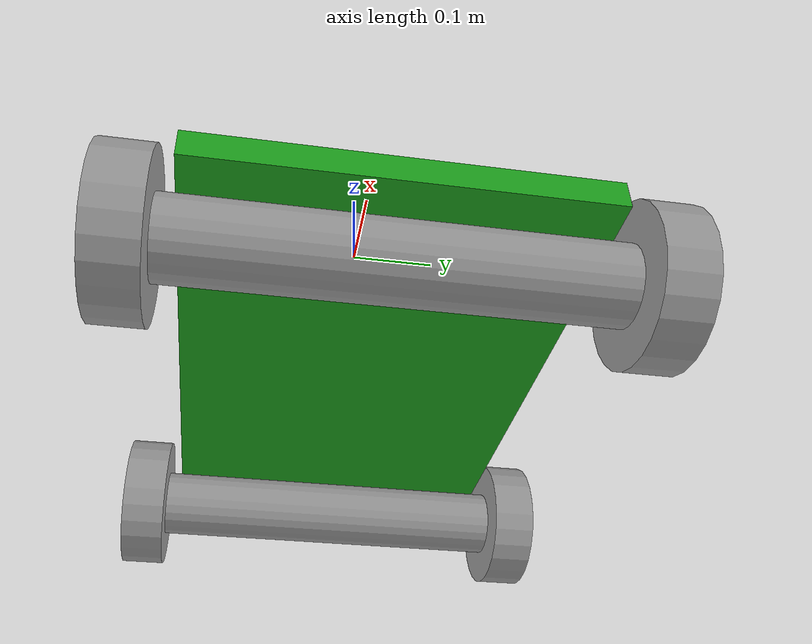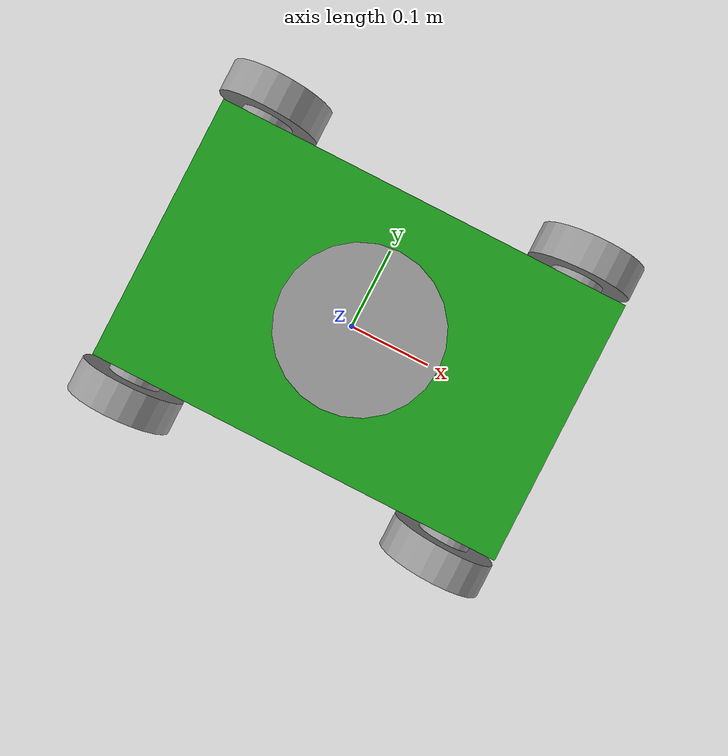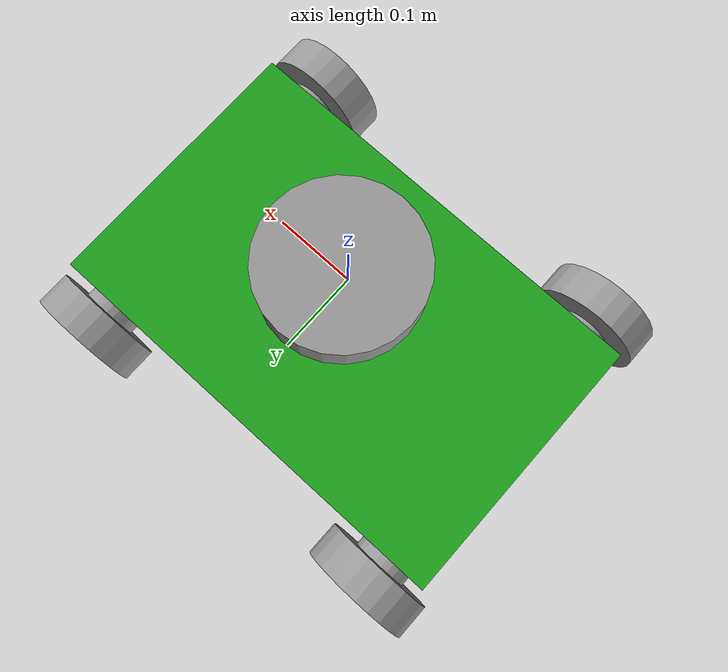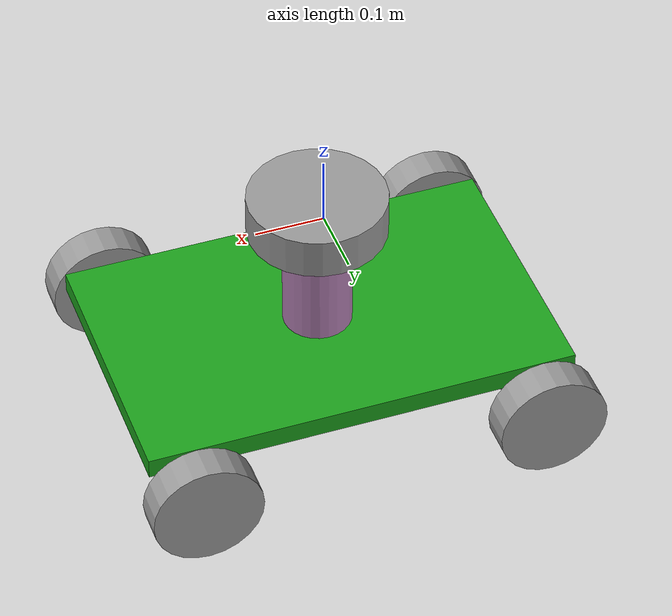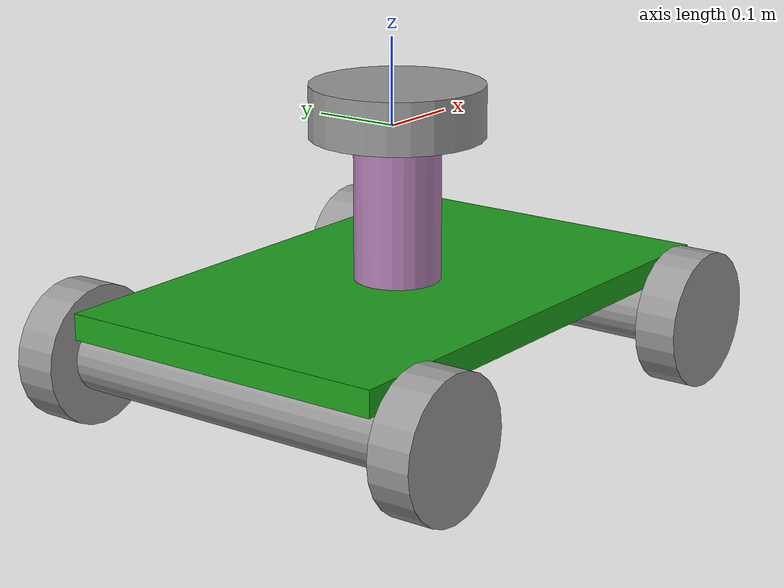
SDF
<?xml version='1.0'?>
<sdf version='1.7'>
  <model name='Akkobot'>
    <link name='link_1'>
      <inertial>
        <mass>1</mass>
        <inertia>
          <ixx>0.166667</ixx>
          <ixy>0</ixy>
          <ixz>0</ixz>
          <iyy>0.166667</iyy>
          <iyz>0</iyz>
          <izz>0.166667</izz>
        </inertia>
        <pose>0 0 0 0 -0 0</pose>
      </inertial>
      <pose>0.01 1e-06 -0.194167 0 -0 0</pose>
      <gravity>1</gravity>
      <self_collide>0</self_collide>
      <kinematic>0</kinematic>
      <enable_wind>0</enable_wind>
      <visual name='visual'>
        <pose>0 0 0 0 -0 0</pose>
        <geometry>
          <box>
            <size>0.63 0.4 0.03</size>
          </box>
        </geometry>
        <material>
          <lighting>1</lighting>
          <script>
            <uri>file://media/materials/scripts/gazebo.material</uri>
            <name>Gazebo/Grey</name>
          </script>
          <shader type='pixel'>
            <normal_map>__default__</normal_map>
          </shader>
          <ambient>0.3 0.3 0.3 1</ambient>
          <diffuse>0.11 0.63 0.11 1</diffuse>
          <specular>0.01 0.01 0.01 1</specular>
          <emissive>0 0 0 1</emissive>
        </material>
        <transparency>0</transparency>
        <cast_shadows>1</cast_shadows>
      </visual>
      <visual name='ModelPreview_0::link_1::visual_1'>
        <pose>0 0 0.098 0 -0 0</pose>
        <geometry>
          <cylinder>
            <radius>0.05</radius>
            <length>0.17</length>
          </cylinder>
        </geometry>
        <material>
          <lighting>1</lighting>
          <script>
            <uri>file://media/materials/scripts/gazebo.material</uri>
            <name>Gazebo/Grey</name>
          </script>
          <shader type='pixel'>
            <normal_map>__default__</normal_map>
          </shader>
          <ambient>0.3 0.3 0.3 1</ambient>
          <diffuse>0.7 0.5 0.7 1</diffuse>
          <specular>0.01 0.01 0.01 1</specular>
          <emissive>0 0 0 1</emissive>
        </material>
        <transparency>0</transparency>
        <cast_shadows>1</cast_shadows>
      </visual>
      <visual name='ModelPreview_0::link_1::visual_3'>
        <pose>0 0 0.21 0 -0 0</pose>
        <geometry>
          <cylinder>
            <radius>0.1</radius>
            <length>0.06</length>
          </cylinder>
        </geometry>
        <material>
          <lighting>1</lighting>
          <script>
            <uri>file://media/materials/scripts/gazebo.material</uri>
            <name>Gazebo/Grey</name>
          </script>
          <shader type='pixel'>
            <normal_map>__default__</normal_map>
          </shader>
          <ambient>0.3 0.3 0.3 1</ambient>
          <diffuse>0.18 0.18 0.18 1</diffuse>
          <specular>0.01 0.01 0.01 1</specular>
          <emissive>0 0 0 1</emissive>
        </material>
        <transparency>0</transparency>
        <cast_shadows>1</cast_shadows>
      </visual>
      <collision name='collision'>
        <laser_retro>0</laser_retro>
        <max_contacts>10</max_contacts>
        <pose>0 0 0 0 -0 0</pose>
        <geometry>
          <box>
            <size>0.65 0.4 0.03</size>
          </box>
        </geometry>
        <surface>
          <friction>
            <ode>
              <mu>1</mu>
              <mu2>1</mu2>
              <fdir1>0 0 0</fdir1>
              <slip1>0</slip1>
              <slip2>0</slip2>
            </ode>
            <torsional>
              <coefficient>1</coefficient>
              <patch_radius>0</patch_radius>
              <surface_radius>0</surface_radius>
              <use_patch_radius>1</use_patch_radius>
              <ode>
                <slip>0</slip>
              </ode>
            </torsional>
          </friction>
          <bounce>
            <restitution_coefficient>0</restitution_coefficient>
            <threshold>1e+06</threshold>
          </bounce>
          <contact>
            <collide_without_contact>0</collide_without_contact>
            <collide_without_contact_bitmask>1</collide_without_contact_bitmask>
            <collide_bitmask>1</collide_bitmask>
            <ode>
              <soft_cfm>0</soft_cfm>
              <soft_erp>0.2</soft_erp>
              <kp>1e+13</kp>
              <kd>1</kd>
              <max_vel>0.01</max_vel>
              <min_depth>0</min_depth>
            </ode>
            <bullet>
              <split_impulse>1</split_impulse>
              <split_impulse_penetration_threshold>-0.01</split_impulse_penetration_threshold>
              <soft_cfm>0</soft_cfm>
              <soft_erp>0.2</soft_erp>
              <kp>1e+13</kp>
              <kd>1</kd>
            </bullet>
          </contact>
        </surface>
      </collision>
    </link>
    <link name='link_2'>
      <inertial>
        <mass>1</mass>
        <inertia>
          <ixx>0.145833</ixx>
          <ixy>0</ixy>
          <ixz>0</ixz>
          <iyy>0.145833</iyy>
          <iyz>0</iyz>
          <izz>0.125</izz>
        </inertia>
        <pose>0 0 0 0 -0 0</pose>
      </inertial>
      <pose>-0.25 1e-06 -0.244167 1.5707 -0 0</pose>
      <gravity>1</gravity>
      <self_collide>0</self_collide>
      <kinematic>0</kinematic>
      <enable_wind>0</enable_wind>
      <visual name='ModelPreview_0::link_2::visual_1'>
        <pose>0 0 0.24 0 -0 0</pose>
        <geometry>
          <cylinder>
            <radius>0.08</radius>
            <length>0.05</length>
          </cylinder>
        </geometry>
        <material>
          <lighting>1</lighting>
          <script>
            <uri>file://media/materials/scripts/gazebo.material</uri>
            <name>Gazebo/Grey</name>
          </script>
          <shader type='pixel'>
            <normal_map>__default__</normal_map>
          </shader>
          <ambient>0.3 0.3 0.3 1</ambient>
          <diffuse>0.18 0.18 0.18 1</diffuse>
          <specular>0.01 0.01 0.01 1</specular>
          <emissive>0 0 0 1</emissive>
        </material>
        <transparency>0</transparency>
        <cast_shadows>1</cast_shadows>
      </visual>
      <visual name='ModelPreview_0::link_2::visual_2'>
        <pose>0 0 -0.24 0 -0 0</pose>
        <geometry>
          <cylinder>
            <radius>0.08</radius>
            <length>0.05</length>
          </cylinder>
        </geometry>
        <material>
          <lighting>1</lighting>
          <script>
            <uri>file://media/materials/scripts/gazebo.material</uri>
            <name>Gazebo/Grey</name>
          </script>
          <shader type='pixel'>
            <normal_map>__default__</normal_map>
          </shader>
          <ambient>0.3 0.3 0.3 1</ambient>
          <diffuse>0.18 0.18 0.18 1</diffuse>
          <specular>0.01 0.01 0.01 1</specular>
          <emissive>0 0 0 1</emissive>
        </material>
        <transparency>0</transparency>
        <cast_shadows>1</cast_shadows>
      </visual>
      <visual name='visual'>
        <pose>0 0 0 0 -0 0</pose>
        <geometry>
          <cylinder>
            <radius>0.04</radius>
            <length>0.44</length>
          </cylinder>
        </geometry>
        <material>
          <lighting>1</lighting>
          <script>
            <uri>file://media/materials/scripts/gazebo.material</uri>
            <name>Gazebo/Grey</name>
          </script>
          <shader type='pixel'>
            <normal_map>__default__</normal_map>
          </shader>
          <ambient>0.3 0.3 0.3 1</ambient>
          <diffuse>0.07 0.03 0.07 1</diffuse>
          <specular>0.01 0.01 0.01 1</specular>
          <emissive>0 0 0 1</emissive>
        </material>
        <transparency>0</transparency>
        <cast_shadows>1</cast_shadows>
      </visual>
      <collision name='collision'>
        <laser_retro>0</laser_retro>
        <max_contacts>10</max_contacts>
        <pose>0 0 0 0 -0 0</pose>
        <geometry>
          <cylinder>
            <radius>0.04</radius>
            <length>0.44</length>
          </cylinder>
        </geometry>
        <surface>
          <friction>
            <ode>
              <mu>1</mu>
              <mu2>1</mu2>
              <fdir1>0 0 0</fdir1>
              <slip1>0</slip1>
              <slip2>0</slip2>
            </ode>
            <torsional>
              <coefficient>1</coefficient>
              <patch_radius>0</patch_radius>
              <surface_radius>0</surface_radius>
              <use_patch_radius>1</use_patch_radius>
              <ode>
                <slip>0</slip>
              </ode>
            </torsional>
          </friction>
          <bounce>
            <restitution_coefficient>0</restitution_coefficient>
            <threshold>1e+06</threshold>
          </bounce>
          <contact>
            <collide_without_contact>0</collide_without_contact>
            <collide_without_contact_bitmask>1</collide_without_contact_bitmask>
            <collide_bitmask>1</collide_bitmask>
            <ode>
              <soft_cfm>0</soft_cfm>
              <soft_erp>0.2</soft_erp>
              <kp>1e+13</kp>
              <kd>1</kd>
              <max_vel>0.01</max_vel>
              <min_depth>0</min_depth>
            </ode>
            <bullet>
              <split_impulse>1</split_impulse>
              <split_impulse_penetration_threshold>-0.01</split_impulse_penetration_threshold>
              <soft_cfm>0</soft_cfm>
              <soft_erp>0.2</soft_erp>
              <kp>1e+13</kp>
              <kd>1</kd>
            </bullet>
          </contact>
        </surface>
      </collision>
    </link>
    <link name='link_2_clone'>
      <inertial>
        <mass>1</mass>
        <inertia>
          <ixx>0.145833</ixx>
          <ixy>0</ixy>
          <ixz>0</ixz>
          <iyy>0.145833</iyy>
          <iyz>0</iyz>
          <izz>0.125</izz>
        </inertia>
        <pose>0 0 0 0 -0 0</pose>
      </inertial>
      <pose>0.26 1e-06 -0.244167 1.5707 -0 0</pose>
      <gravity>1</gravity>
      <self_collide>0</self_collide>
      <kinematic>0</kinematic>
      <enable_wind>0</enable_wind>
      <visual name='visual_1'>
        <pose>0 0 0.24 0 -0 0</pose>
        <geometry>
          <cylinder>
            <radius>0.08</radius>
            <length>0.05</length>
          </cylinder>
        </geometry>
        <material>
          <lighting>1</lighting>
          <script>
            <uri>file://media/materials/scripts/gazebo.material</uri>
            <name>Gazebo/Grey</name>
          </script>
          <shader type='pixel'>
            <normal_map>__default__</normal_map>
          </shader>
          <ambient>0.3 0.3 0.3 1</ambient>
          <diffuse>0.18 0.18 0.18 1</diffuse>
          <specular>0.01 0.01 0.01 1</specular>
          <emissive>0 0 0 1</emissive>
        </material>
        <transparency>0</transparency>
        <cast_shadows>1</cast_shadows>
      </visual>
      <visual name='visual_2'>
        <pose>0 0 -0.24 0 -0 0</pose>
        <geometry>
          <cylinder>
            <radius>0.08</radius>
            <length>0.05</length>
          </cylinder>
        </geometry>
        <material>
          <lighting>1</lighting>
          <script>
            <uri>file://media/materials/scripts/gazebo.material</uri>
            <name>Gazebo/Grey</name>
          </script>
          <shader type='pixel'>
            <normal_map>__default__</normal_map>
          </shader>
          <ambient>0.3 0.3 0.3 1</ambient>
          <diffuse>0.18 0.18 0.18 1</diffuse>
          <specular>0.01 0.01 0.01 1</specular>
          <emissive>0 0 0 1</emissive>
        </material>
        <transparency>0</transparency>
        <cast_shadows>1</cast_shadows>
      </visual>
      <visual name='visual'>
        <pose>0 0 0 0 -0 0</pose>
        <geometry>
          <cylinder>
            <radius>0.04</radius>
            <length>0.44</length>
          </cylinder>
        </geometry>
        <material>
          <lighting>1</lighting>
          <script>
            <uri>file://media/materials/scripts/gazebo.material</uri>
            <name>Gazebo/Grey</name>
          </script>
          <shader type='pixel'>
            <normal_map>__default__</normal_map>
          </shader>
          <ambient>0.3 0.3 0.3 1</ambient>
          <diffuse>0.07 0.03 0.07 1</diffuse>
          <specular>0.01 0.01 0.01 1</specular>
          <emissive>0 0 0 1</emissive>
        </material>
        <transparency>0</transparency>
        <cast_shadows>1</cast_shadows>
      </visual>
      <collision name='collision'>
        <laser_retro>0</laser_retro>
        <max_contacts>10</max_contacts>
        <pose>0 0 0 0 -0 0</pose>
        <geometry>
          <cylinder>
            <radius>0.04</radius>
            <length>0.44</length>
          </cylinder>
        </geometry>
        <surface>
          <friction>
            <ode>
              <mu>1</mu>
              <mu2>1</mu2>
              <fdir1>0 0 0</fdir1>
              <slip1>0</slip1>
              <slip2>0</slip2>
            </ode>
            <torsional>
              <coefficient>1</coefficient>
              <patch_radius>0</patch_radius>
              <surface_radius>0</surface_radius>
              <use_patch_radius>1</use_patch_radius>
              <ode>
                <slip>0</slip>
              </ode>
            </torsional>
          </friction>
          <bounce>
            <restitution_coefficient>0</restitution_coefficient>
            <threshold>1e+06</threshold>
          </bounce>
          <contact>
            <collide_without_contact>0</collide_without_contact>
            <collide_without_contact_bitmask>1</collide_without_contact_bitmask>
            <collide_bitmask>1</collide_bitmask>
            <ode>
              <soft_cfm>0</soft_cfm>
              <soft_erp>0.2</soft_erp>
              <kp>1e+13</kp>
              <kd>1</kd>
              <max_vel>0.01</max_vel>
              <min_depth>0</min_depth>
            </ode>
            <bullet>
              <split_impulse>1</split_impulse>
              <split_impulse_penetration_threshold>-0.01</split_impulse_penetration_threshold>
              <soft_cfm>0</soft_cfm>
              <soft_erp>0.2</soft_erp>
              <kp>1e+13</kp>
              <kd>1</kd>
            </bullet>
          </contact>
        </surface>
      </collision>
    </link>
    <joint name='link_1_JOINT_0' type='revolute'>
      <parent>link_1</parent>
      <child>link_2</child>
      <pose>0 0 0 0 -0 0</pose>
      <axis>
        <xyz>0 0 1</xyz>
        <limit>
          <lower>-1.79769e+308</lower>
          <upper>1.79769e+308</upper>
          <effort>-1</effort>
          <velocity>-1</velocity>
        </limit>
        <dynamics>
          <spring_reference>0</spring_reference>
          <spring_stiffness>0</spring_stiffness>
          <damping>0</damping>
          <friction>0</friction>
        </dynamics>
      </axis>
      <physics>
        <ode>
          <limit>
            <cfm>0</cfm>
            <erp>0.2</erp>
          </limit>
          <suspension>
            <cfm>0</cfm>
            <erp>0.2</erp>
          </suspension>
        </ode>
      </physics>
    </joint>
    <joint name='link_1_JOINT_1' type='revolute'>
      <parent>link_1</parent>
      <child>link_2_clone</child>
      <pose>0 0 0 0 -0 0</pose>
      <axis>
        <xyz>0 0 1</xyz>
        <limit>
          <lower>-1.79769e+308</lower>
          <upper>1.79769e+308</upper>
          <effort>-1</effort>
          <velocity>-1</velocity>
        </limit>
        <dynamics>
          <spring_reference>0</spring_reference>
          <spring_stiffness>0</spring_stiffness>
          <damping>0</damping>
        </dynamics>
      </axis>
      <physics>
        <ode>
          <limit>
            <cfm>0</cfm>
            <erp>0.2</erp>
          </limit>
          <suspension>
            <cfm>0</cfm>
            <erp>0.2</erp>
          </suspension>
        </ode>
      </physics>
    </joint>
    <static>0</static>
    <allow_auto_disable>1</allow_auto_disable>
  </model>
</sdf>
